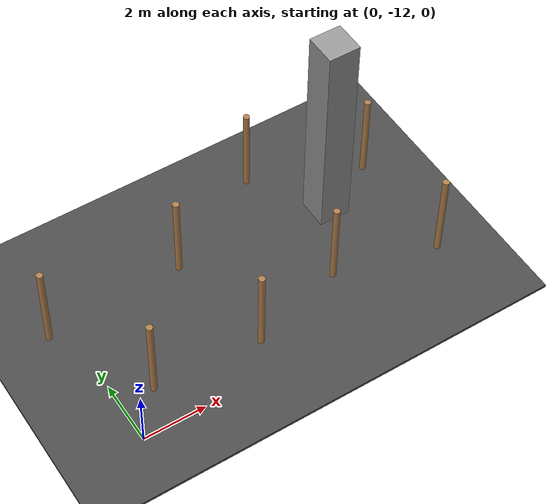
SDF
<sdf version="1.7">
 <world name="default">
  <model name="asphalt_plane">
   <pose>-0.054783 -0.070898 0 0 -0 0</pose>
   <static>1</static>
   <link name="link">
    <collision name="collision"><geometry><box><size>42.4866 44.6464 0.1</size></box></geometry></collision>
    <visual name="visual">
     <cast_shadows>0</cast_shadows>
     <geometry><box><size>42.4866 44.6464 0.1</size></box></geometry>
     <material>
      <script>
       <uri>model://asphalt_plane/materials/scripts</uri>
       <uri>model://asphalt_plane/materials/textures</uri>
       <name>vrc/asphalt</name>
      </script>
     </material>
    </visual>
   </link>
  </model>
  <model name="wooden_cylinder1_clone_14">
   <pose>-0.619086 -7.63483 -4e-05 0 -0 0</pose>
   <link name="wooden_cylinder::link_0">
    <pose>0 0 1.5 0 -0 0</pose>
    <inertial>
     <mass>1</mass>
     <inertia><ixx>0.145833</ixx><ixy>0</ixy><ixz>0</ixz><iyy>0.145833</iyy><iyz>0</iyz><izz>0.125</izz></inertia>
    </inertial>
    <visual name="visual">
     <geometry><cylinder><radius>0.1</radius><length>3</length></cylinder></geometry>
     <material>
      <lighting>1</lighting>
      <script><uri>file://media/materials/scripts/gazebo.material</uri><name>Gazebo/Wood</name></script>
      <ambient>0.3 0.3 0.3 1</ambient>
      <diffuse>0.7 0.7 0.7 1</diffuse>
      <specular>0.01 0.01 0.01 1</specular>
      <emissive>0 0 0 1</emissive>
      <shader type="vertex"><normal_map>__default__</normal_map></shader>
     </material>
    </visual>
    <collision name="collision">
     <geometry><cylinder><radius>0.1</radius><length>3</length></cylinder></geometry>
     <surface>
      <friction>
       <ode><mu>1</mu><mu2>1</mu2><fdir1>0 0 0</fdir1><slip1>0</slip1><slip2>0</slip2></ode>
       <torsional>
        <coefficient>1</coefficient>
        <patch_radius>0</patch_radius>
        <surface_radius>0</surface_radius>
        <use_patch_radius>1</use_patch_radius>
        <ode><slip>0</slip></ode>
       </torsional>
      </friction>
      <bounce><restitution_coefficient>0</restitution_coefficient><threshold>1e+06</threshold></bounce>
      <contact>
       <collide_without_contact>0</collide_without_contact>
       <collide_without_contact_bitmask>1</collide_without_contact_bitmask>
       <collide_bitmask>1</collide_bitmask>
       <ode>
        <soft_cfm>0</soft_cfm>
        <soft_erp>0.2</soft_erp>
        <kp>1e+13</kp>
        <kd>1</kd>
        <max_vel>0.01</max_vel>
        <min_depth>0</min_depth>
       </ode>
       <bullet>
        <split_impulse>1</split_impulse>
        <split_impulse_penetration_threshold>-0.01</split_impulse_penetration_threshold>
        <soft_cfm>0</soft_cfm>
        <soft_erp>0.2</soft_erp>
        <kp>1e+13</kp>
        <kd>1</kd>
       </bullet>
      </contact>
     </surface>
    </collision>
   </link>
   <static>1</static>
  </model>
  <model name="wooden_cylinder1_clone_18">
   <pose>1.05229 -10.7459 3e-05 0 -0 0</pose>
   <link name="wooden_cylinder::link_0">
    <pose>0 0 1.5 0 -0 0</pose>
    <inertial>
     <mass>1</mass>
     <inertia><ixx>0.145833</ixx><ixy>0</ixy><ixz>0</ixz><iyy>0.145833</iyy><iyz>0</iyz><izz>0.125</izz></inertia>
    </inertial>
    <visual name="visual">
     <geometry><cylinder><radius>0.1</radius><length>3</length></cylinder></geometry>
     <material>
      <lighting>1</lighting>
      <script><uri>file://media/materials/scripts/gazebo.material</uri><name>Gazebo/Wood</name></script>
      <ambient>0.3 0.3 0.3 1</ambient>
      <diffuse>0.7 0.7 0.7 1</diffuse>
      <specular>0.01 0.01 0.01 1</specular>
      <emissive>0 0 0 1</emissive>
      <shader type="vertex"><normal_map>__default__</normal_map></shader>
     </material>
    </visual>
    <collision name="collision">
     <geometry><cylinder><radius>0.1</radius><length>3</length></cylinder></geometry>
     <surface>
      <friction>
       <ode><mu>1</mu><mu2>1</mu2><fdir1>0 0 0</fdir1><slip1>0</slip1><slip2>0</slip2></ode>
       <torsional>
        <coefficient>1</coefficient>
        <patch_radius>0</patch_radius>
        <surface_radius>0</surface_radius>
        <use_patch_radius>1</use_patch_radius>
        <ode><slip>0</slip></ode>
       </torsional>
      </friction>
      <bounce><restitution_coefficient>0</restitution_coefficient><threshold>1e+06</threshold></bounce>
      <contact>
       <collide_without_contact>0</collide_without_contact>
       <collide_without_contact_bitmask>1</collide_without_contact_bitmask>
       <collide_bitmask>1</collide_bitmask>
       <ode>
        <soft_cfm>0</soft_cfm>
        <soft_erp>0.2</soft_erp>
        <kp>1e+13</kp>
        <kd>1</kd>
        <max_vel>0.01</max_vel>
        <min_depth>0</min_depth>
       </ode>
       <bullet>
        <split_impulse>1</split_impulse>
        <split_impulse_penetration_threshold>-0.01</split_impulse_penetration_threshold>
        <soft_cfm>0</soft_cfm>
        <soft_erp>0.2</soft_erp>
        <kp>1e+13</kp>
        <kd>1</kd>
       </bullet>
      </contact>
     </surface>
    </collision>
   </link>
   <static>1</static>
  </model>
  <model name="wooden_cylinder1_clone_19">
   <pose>7.54901 -10.0816 0.00023 0 -0 0</pose>
   <link name="wooden_cylinder::link_0">
    <pose>0 0 1.5 0 -0 0</pose>
    <inertial>
     <mass>1</mass>
     <inertia><ixx>0.145833</ixx><ixy>0</ixy><ixz>0</ixz><iyy>0.145833</iyy><iyz>0</iyz><izz>0.125</izz></inertia>
    </inertial>
    <visual name="visual">
     <geometry><cylinder><radius>0.1</radius><length>3</length></cylinder></geometry>
     <material>
      <lighting>1</lighting>
      <script><uri>file://media/materials/scripts/gazebo.material</uri><name>Gazebo/Wood</name></script>
      <ambient>0.3 0.3 0.3 1</ambient>
      <diffuse>0.7 0.7 0.7 1</diffuse>
      <specular>0.01 0.01 0.01 1</specular>
      <emissive>0 0 0 1</emissive>
      <shader type="vertex"><normal_map>__default__</normal_map></shader>
     </material>
    </visual>
    <collision name="collision">
     <geometry><cylinder><radius>0.1</radius><length>3</length></cylinder></geometry>
     <surface>
      <friction>
       <ode><mu>1</mu><mu2>1</mu2><fdir1>0 0 0</fdir1><slip1>0</slip1><slip2>0</slip2></ode>
       <torsional>
        <coefficient>1</coefficient>
        <patch_radius>0</patch_radius>
        <surface_radius>0</surface_radius>
        <use_patch_radius>1</use_patch_radius>
        <ode><slip>0</slip></ode>
       </torsional>
      </friction>
      <bounce><restitution_coefficient>0</restitution_coefficient><threshold>1e+06</threshold></bounce>
      <contact>
       <collide_without_contact>0</collide_without_contact>
       <collide_without_contact_bitmask>1</collide_without_contact_bitmask>
       <collide_bitmask>1</collide_bitmask>
       <ode>
        <soft_cfm>0</soft_cfm>
        <soft_erp>0.2</soft_erp>
        <kp>1e+13</kp>
        <kd>1</kd>
        <max_vel>0.01</max_vel>
        <min_depth>0</min_depth>
       </ode>
       <bullet>
        <split_impulse>1</split_impulse>
        <split_impulse_penetration_threshold>-0.01</split_impulse_penetration_threshold>
        <soft_cfm>0</soft_cfm>
        <soft_erp>0.2</soft_erp>
        <kp>1e+13</kp>
        <kd>1</kd>
       </bullet>
      </contact>
     </surface>
    </collision>
   </link>
   <static>1</static>
  </model>
  <model name="wooden_cylinder1_clone_20">
   <pose>3.82649 -7.44946 -0.0001 0 -0 0</pose>
   <link name="wooden_cylinder::link_0">
    <pose>0 0 1.5 0 -0 0</pose>
    <inertial>
     <mass>1</mass>
     <inertia><ixx>0.145833</ixx><ixy>0</ixy><ixz>0</ixz><iyy>0.145833</iyy><iyz>0</iyz><izz>0.125</izz></inertia>
    </inertial>
    <visual name="visual">
     <geometry><cylinder><radius>0.1</radius><length>3</length></cylinder></geometry>
     <material>
      <lighting>1</lighting>
      <script><uri>file://media/materials/scripts/gazebo.material</uri><name>Gazebo/Wood</name></script>
      <ambient>0.3 0.3 0.3 1</ambient>
      <diffuse>0.7 0.7 0.7 1</diffuse>
      <specular>0.01 0.01 0.01 1</specular>
      <emissive>0 0 0 1</emissive>
      <shader type="vertex"><normal_map>__default__</normal_map></shader>
     </material>
    </visual>
    <collision name="collision">
     <geometry><cylinder><radius>0.1</radius><length>3</length></cylinder></geometry>
     <surface>
      <friction>
       <ode><mu>1</mu><mu2>1</mu2><fdir1>0 0 0</fdir1><slip1>0</slip1><slip2>0</slip2></ode>
       <torsional>
        <coefficient>1</coefficient>
        <patch_radius>0</patch_radius>
        <surface_radius>0</surface_radius>
        <use_patch_radius>1</use_patch_radius>
        <ode><slip>0</slip></ode>
       </torsional>
      </friction>
      <bounce><restitution_coefficient>0</restitution_coefficient><threshold>1e+06</threshold></bounce>
      <contact>
       <collide_without_contact>0</collide_without_contact>
       <collide_without_contact_bitmask>1</collide_without_contact_bitmask>
       <collide_bitmask>1</collide_bitmask>
       <ode>
        <soft_cfm>0</soft_cfm>
        <soft_erp>0.2</soft_erp>
        <kp>1e+13</kp>
        <kd>1</kd>
        <max_vel>0.01</max_vel>
        <min_depth>0</min_depth>
       </ode>
       <bullet>
        <split_impulse>1</split_impulse>
        <split_impulse_penetration_threshold>-0.01</split_impulse_penetration_threshold>
        <soft_cfm>0</soft_cfm>
        <soft_erp>0.2</soft_erp>
        <kp>1e+13</kp>
        <kd>1</kd>
       </bullet>
      </contact>
     </surface>
    </collision>
   </link>
   <static>1</static>
  </model>
  <model name="wooden_cylinder1_clone_21">
   <pose>4.4732 -10.9726 0.0001 0 -0 0</pose>
   <link name="wooden_cylinder::link_0">
    <pose>0 0 1.5 0 -0 0</pose>
    <inertial>
     <mass>1</mass>
     <inertia><ixx>0.145833</ixx><ixy>0</ixy><ixz>0</ixz><iyy>0.145833</iyy><iyz>0</iyz><izz>0.125</izz></inertia>
    </inertial>
    <visual name="visual">
     <geometry><cylinder><radius>0.1</radius><length>3</length></cylinder></geometry>
     <material>
      <lighting>1</lighting>
      <script><uri>file://media/materials/scripts/gazebo.material</uri><name>Gazebo/Wood</name></script>
      <ambient>0.3 0.3 0.3 1</ambient>
      <diffuse>0.7 0.7 0.7 1</diffuse>
      <specular>0.01 0.01 0.01 1</specular>
      <emissive>0 0 0 1</emissive>
      <shader type="vertex"><normal_map>__default__</normal_map></shader>
     </material>
    </visual>
    <collision name="collision">
     <geometry><cylinder><radius>0.1</radius><length>3</length></cylinder></geometry>
     <surface>
      <friction>
       <ode><mu>1</mu><mu2>1</mu2><fdir1>0 0 0</fdir1><slip1>0</slip1><slip2>0</slip2></ode>
       <torsional>
        <coefficient>1</coefficient>
        <patch_radius>0</patch_radius>
        <surface_radius>0</surface_radius>
        <use_patch_radius>1</use_patch_radius>
        <ode><slip>0</slip></ode>
       </torsional>
      </friction>
      <bounce><restitution_coefficient>0</restitution_coefficient><threshold>1e+06</threshold></bounce>
      <contact>
       <collide_without_contact>0</collide_without_contact>
       <collide_without_contact_bitmask>1</collide_without_contact_bitmask>
       <collide_bitmask>1</collide_bitmask>
       <ode>
        <soft_cfm>0</soft_cfm>
        <soft_erp>0.2</soft_erp>
        <kp>1e+13</kp>
        <kd>1</kd>
        <max_vel>0.01</max_vel>
        <min_depth>0</min_depth>
       </ode>
       <bullet>
        <split_impulse>1</split_impulse>
        <split_impulse_penetration_threshold>-0.01</split_impulse_penetration_threshold>
        <soft_cfm>0</soft_cfm>
        <soft_erp>0.2</soft_erp>
        <kp>1e+13</kp>
        <kd>1</kd>
       </bullet>
      </contact>
     </surface>
    </collision>
   </link>
   <static>1</static>
  </model>
  <model name="wooden_cylinder1_clone_25">
   <pose>7.31258 -5.66031 -0.00017 0 -0 0</pose>
   <link name="wooden_cylinder::link_0">
    <pose>0 0 1.5 0 -0 0</pose>
    <inertial>
     <mass>1</mass>
     <inertia><ixx>0.145833</ixx><ixy>0</ixy><ixz>0</ixz><iyy>0.145833</iyy><iyz>0</iyz><izz>0.125</izz></inertia>
    </inertial>
    <visual name="visual">
     <geometry><cylinder><radius>0.1</radius><length>3</length></cylinder></geometry>
     <material>
      <lighting>1</lighting>
      <script><uri>file://media/materials/scripts/gazebo.material</uri><name>Gazebo/Wood</name></script>
      <ambient>0.3 0.3 0.3 1</ambient>
      <diffuse>0.7 0.7 0.7 1</diffuse>
      <specular>0.01 0.01 0.01 1</specular>
      <emissive>0 0 0 1</emissive>
      <shader type="vertex"><normal_map>__default__</normal_map></shader>
     </material>
    </visual>
    <collision name="collision">
     <geometry><cylinder><radius>0.1</radius><length>3</length></cylinder></geometry>
     <surface>
      <friction>
       <ode><mu>1</mu><mu2>1</mu2><fdir1>0 0 0</fdir1><slip1>0</slip1><slip2>0</slip2></ode>
       <torsional>
        <coefficient>1</coefficient>
        <patch_radius>0</patch_radius>
        <surface_radius>0</surface_radius>
        <use_patch_radius>1</use_patch_radius>
        <ode><slip>0</slip></ode>
       </torsional>
      </friction>
      <bounce><restitution_coefficient>0</restitution_coefficient><threshold>1e+06</threshold></bounce>
      <contact>
       <collide_without_contact>0</collide_without_contact>
       <collide_without_contact_bitmask>1</collide_without_contact_bitmask>
       <collide_bitmask>1</collide_bitmask>
       <ode>
        <soft_cfm>0</soft_cfm>
        <soft_erp>0.2</soft_erp>
        <kp>1e+13</kp>
        <kd>1</kd>
        <max_vel>0.01</max_vel>
        <min_depth>0</min_depth>
       </ode>
       <bullet>
        <split_impulse>1</split_impulse>
        <split_impulse_penetration_threshold>-0.01</split_impulse_penetration_threshold>
        <soft_cfm>0</soft_cfm>
        <soft_erp>0.2</soft_erp>
        <kp>1e+13</kp>
        <kd>1</kd>
       </bullet>
      </contact>
     </surface>
    </collision>
   </link>
   <static>1</static>
  </model>
  <model name="wooden_cylinder1_clone_28">
   <pose>10.6822 -7.09279 -0.00013 0 -0 0</pose>
   <link name="wooden_cylinder::link_0">
    <pose>0 0 1.5 0 -0 0</pose>
    <inertial>
     <mass>1</mass>
     <inertia><ixx>0.145833</ixx><ixy>0</ixy><ixz>0</ixz><iyy>0.145833</iyy><iyz>0</iyz><izz>0.125</izz></inertia>
    </inertial>
    <visual name="visual">
     <geometry><cylinder><radius>0.1</radius><length>3</length></cylinder></geometry>
     <material>
      <lighting>1</lighting>
      <script><uri>file://media/materials/scripts/gazebo.material</uri><name>Gazebo/Wood</name></script>
      <ambient>0.3 0.3 0.3 1</ambient>
      <diffuse>0.7 0.7 0.7 1</diffuse>
      <specular>0.01 0.01 0.01 1</specular>
      <emissive>0 0 0 1</emissive>
      <shader type="vertex"><normal_map>__default__</normal_map></shader>
     </material>
    </visual>
    <collision name="collision">
     <geometry><cylinder><radius>0.1</radius><length>3</length></cylinder></geometry>
     <surface>
      <friction>
       <ode><mu>1</mu><mu2>1</mu2><fdir1>0 0 0</fdir1><slip1>0</slip1><slip2>0</slip2></ode>
       <torsional>
        <coefficient>1</coefficient>
        <patch_radius>0</patch_radius>
        <surface_radius>0</surface_radius>
        <use_patch_radius>1</use_patch_radius>
        <ode><slip>0</slip></ode>
       </torsional>
      </friction>
      <bounce><restitution_coefficient>0</restitution_coefficient><threshold>1e+06</threshold></bounce>
      <contact>
       <collide_without_contact>0</collide_without_contact>
       <collide_without_contact_bitmask>1</collide_without_contact_bitmask>
       <collide_bitmask>1</collide_bitmask>
       <ode>
        <soft_cfm>0</soft_cfm>
        <soft_erp>0.2</soft_erp>
        <kp>1e+13</kp>
        <kd>1</kd>
        <max_vel>0.01</max_vel>
        <min_depth>0</min_depth>
       </ode>
       <bullet>
        <split_impulse>1</split_impulse>
        <split_impulse_penetration_threshold>-0.01</split_impulse_penetration_threshold>
        <soft_cfm>0</soft_cfm>
        <soft_erp>0.2</soft_erp>
        <kp>1e+13</kp>
        <kd>1</kd>
       </bullet>
      </contact>
     </surface>
    </collision>
   </link>
   <static>1</static>
  </model>
  <model name="wooden_cylinder1_clone_47">
   <pose>10.7931 -10.8588 5e-05 0 -0 0</pose>
   <link name="wooden_cylinder::link_0">
    <pose>0 0 1.5 0 -0 0</pose>
    <inertial>
     <mass>1</mass>
     <inertia><ixx>0.145833</ixx><ixy>0</ixy><ixz>0</ixz><iyy>0.145833</iyy><iyz>0</iyz><izz>0.125</izz></inertia>
    </inertial>
    <visual name="visual">
     <geometry><cylinder><radius>0.1</radius><length>3</length></cylinder></geometry>
     <material>
      <lighting>1</lighting>
      <script><uri>file://media/materials/scripts/gazebo.material</uri><name>Gazebo/Wood</name></script>
      <ambient>0.3 0.3 0.3 1</ambient>
      <diffuse>0.7 0.7 0.7 1</diffuse>
      <specular>0.01 0.01 0.01 1</specular>
      <emissive>0 0 0 1</emissive>
      <shader type="vertex"><normal_map>__default__</normal_map></shader>
     </material>
    </visual>
    <collision name="collision">
     <geometry><cylinder><radius>0.1</radius><length>3</length></cylinder></geometry>
     <surface>
      <friction>
       <ode><mu>1</mu><mu2>1</mu2><fdir1>0 0 0</fdir1><slip1>0</slip1><slip2>0</slip2></ode>
       <torsional>
        <coefficient>1</coefficient>
        <patch_radius>0</patch_radius>
        <surface_radius>0</surface_radius>
        <use_patch_radius>1</use_patch_radius>
        <ode><slip>0</slip></ode>
       </torsional>
      </friction>
      <bounce><restitution_coefficient>0</restitution_coefficient><threshold>1e+06</threshold></bounce>
      <contact>
       <collide_without_contact>0</collide_without_contact>
       <collide_without_contact_bitmask>1</collide_without_contact_bitmask>
       <collide_bitmask>1</collide_bitmask>
       <ode>
        <soft_cfm>0</soft_cfm>
        <soft_erp>0.2</soft_erp>
        <kp>1e+13</kp>
        <kd>1</kd>
        <max_vel>0.01</max_vel>
        <min_depth>0</min_depth>
       </ode>
       <bullet>
        <split_impulse>1</split_impulse>
        <split_impulse_penetration_threshold>-0.01</split_impulse_penetration_threshold>
        <soft_cfm>0</soft_cfm>
        <soft_erp>0.2</soft_erp>
        <kp>1e+13</kp>
        <kd>1</kd>
       </bullet>
      </contact>
     </surface>
    </collision>
   </link>
   <static>1</static>
  </model>
  <model name="unit_box_clone">
   <pose>8.78596 -7.85539 3.59634 0 -0 0</pose>
   <link name="link">
    <inertial>
     <mass>1</mass>
     <inertia>
      <ixx>0.166667</ixx>
      <ixy>0</ixy>
      <ixz>0</ixz>
      <iyy>0.166667</iyy>
      <iyz>0</iyz>
      <izz>0.166667</izz>
     </inertia>
    </inertial>
    <collision name="collision"><geometry><box><size>1 1 7.01643</size></box></geometry></collision>
    <visual name="visual">
     <geometry><box><size>1 1 7.01643</size></box></geometry>
     <material>
      <script><name>Gazebo/Grey</name><uri>file://media/materials/scripts/gazebo.material</uri></script>
     </material>
    </visual>
   </link>
  </model>
 </world>
</sdf>
